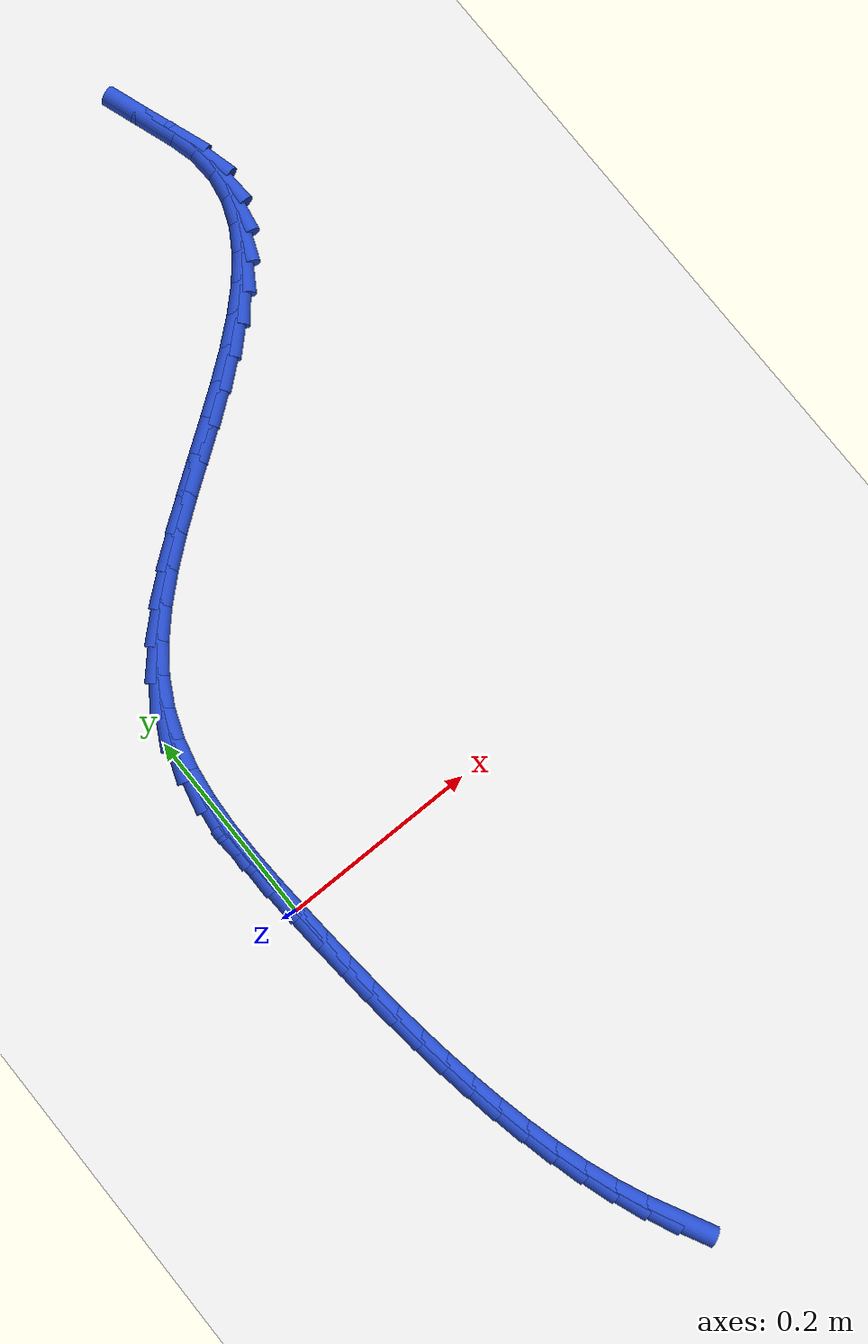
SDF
<sdf version="1.6">
 <world name="default">
  <model name="ground_plane">
   <static>1</static>
   <link name="link">
    <collision name="collision">
     <geometry><plane><normal>0 0 1</normal><size>100 100</size></plane></geometry>
     <surface><friction><ode><mu>100</mu><mu2>50</mu2></ode></friction></surface>
    </collision>
    <visual name="visual">
     <cast_shadows>0</cast_shadows>
     <geometry><plane><normal>0 0 1</normal><size>100 100</size></plane></geometry>
     <material>
      <script><uri>file://media/materials/scripts/gazebo.material</uri><name>Gazebo/WhiteGlow</name></script>
     </material>
    </visual>
   </link>
  </model>
  <model name="line">
   <link name="link_0">
    <pose>7.806255641895632e-18 -4.85722573273506e-17 0.01 0 1.57 -1.5054916479996248</pose>
    <collision name="collision">
     <geometry><cylinder><radius>0.01</radius><length>0.08</length></cylinder></geometry>
    </collision>
    <visual name="visual">
     <material>
      <script><name>Gazebo/Blue</name><uri>file://media/materials/scripts/gazebo.material</uri></script>
     </material>
     <geometry><cylinder><radius>0.01</radius><length>0.08</length></cylinder></geometry>
    </visual>
   </link>
   <link name="link_1">
    <pose>-0.002153279578694225 0.03292593603509368 0.01 0 1.57 -1.528168202188111</pose>
    <collision name="collision">
     <geometry><cylinder><radius>0.01</radius><length>0.08</length></cylinder></geometry>
    </collision>
    <visual name="visual">
     <material>
      <script><name>Gazebo/Blue</name><uri>file://media/materials/scripts/gazebo.material</uri></script>
     </material>
     <geometry><cylinder><radius>0.01</radius><length>0.08</length></cylinder></geometry>
    </visual>
   </link>
   <link name="link_2">
    <pose>-0.003565207728112422 0.06602785705789568 0.01 0 1.57 -1.5683758969438606</pose>
    <collision name="collision">
     <geometry><cylinder><radius>0.01</radius><length>0.08</length></cylinder></geometry>
    </collision>
    <visual name="visual">
     <material>
      <script><name>Gazebo/Blue</name><uri>file://media/materials/scripts/gazebo.material</uri></script>
     </material>
     <geometry><cylinder><radius>0.01</radius><length>0.08</length></cylinder></geometry>
    </visual>
   </link>
   <link name="link_3">
    <pose>-0.0036450373039377845 0.09900936234621759 0.01 0 1.57 1.5142610973654411</pose>
    <collision name="collision">
     <geometry><cylinder><radius>0.01</radius><length>0.08</length></cylinder></geometry>
    </collision>
    <visual name="visual">
     <material>
      <script><name>Gazebo/Blue</name><uri>file://media/materials/scripts/gazebo.material</uri></script>
     </material>
     <geometry><cylinder><radius>0.01</radius><length>0.08</length></cylinder></geometry>
    </visual>
   </link>
   <link name="link_4">
    <pose>-0.001802021161853515 0.13157405117787097 0.01 0 1.57 1.4348609604948583</pose>
    <collision name="collision">
     <geometry><cylinder><radius>0.01</radius><length>0.08</length></cylinder></geometry>
    </collision>
    <visual name="visual">
     <material>
      <script><name>Gazebo/Blue</name><uri>file://media/materials/scripts/gazebo.material</uri></script>
     </material>
     <geometry><cylinder><radius>0.01</radius><length>0.08</length></cylinder></geometry>
    </visual>
   </link>
   <link name="link_5">
    <pose>0.002554587842457188 0.1634255228306674 0.01 0 1.57 1.3334462719967795</pose>
    <collision name="collision">
     <geometry><cylinder><radius>0.01</radius><length>0.08</length></cylinder></geometry>
    </collision>
    <visual name="visual">
     <material>
      <script><name>Gazebo/Blue</name><uri>file://media/materials/scripts/gazebo.material</uri></script>
     </material>
     <geometry><cylinder><radius>0.01</radius><length>0.08</length></cylinder></geometry>
    </visual>
   </link>
   <link name="link_6">
    <pose>0.010015536853311118 0.19426737658241858 0.01 0 1.57 1.2096502299227245</pose>
    <collision name="collision">
     <geometry><cylinder><radius>0.01</radius><length>0.08</length></cylinder></geometry>
    </collision>
    <visual name="visual">
     <material>
      <script><name>Gazebo/Blue</name><uri>file://media/materials/scripts/gazebo.material</uri></script>
     </material>
     <geometry><cylinder><radius>0.01</radius><length>0.08</length></cylinder></geometry>
    </visual>
   </link>
   <link name="link_7">
    <pose>0.021171573015025077 0.223803211710936 0.01 0 1.57 1.0664736958915768</pose>
    <collision name="collision">
     <geometry><cylinder><radius>0.01</radius><length>0.08</length></cylinder></geometry>
    </collision>
    <visual name="visual">
     <material>
      <script><name>Gazebo/Blue</name><uri>file://media/materials/scripts/gazebo.material</uri></script>
     </material>
     <geometry><cylinder><radius>0.01</radius><length>0.08</length></cylinder></geometry>
    </visual>
   </link>
   <link name="link_8">
    <pose>0.036593331610565424 0.25174479866111715 0.01 0 1.57 0.9284972561108572</pose>
    <collision name="collision">
     <geometry><cylinder><radius>0.01</radius><length>0.08</length></cylinder></geometry>
    </collision>
    <visual name="visual">
     <material>
      <script><name>Gazebo/Blue</name><uri>file://media/materials/scripts/gazebo.material</uri></script>
     </material>
     <geometry><cylinder><radius>0.01</radius><length>0.08</length></cylinder></geometry>
    </visual>
   </link>
   <link name="link_9">
    <pose>0.056266545943471996 0.27804154534559256 0.01 0 1.57 0.8190971684627749</pose>
    <collision name="collision">
     <geometry><cylinder><radius>0.01</radius><length>0.08</length></cylinder></geometry>
    </collision>
    <visual name="visual">
     <material>
      <script><name>Gazebo/Blue</name><uri>file://media/materials/scripts/gazebo.material</uri></script>
     </material>
     <geometry><cylinder><radius>0.01</radius><length>0.08</length></cylinder></geometry>
    </visual>
   </link>
   <link name="link_10">
    <pose>0.07951474358143529 0.30291190457634526 0.01 0 1.57 0.7365466639839479</pose>
    <collision name="collision">
     <geometry><cylinder><radius>0.01</radius><length>0.08</length></cylinder></geometry>
    </collision>
    <visual name="visual">
     <material>
      <script><name>Gazebo/Blue</name><uri>file://media/materials/scripts/gazebo.material</uri></script>
     </material>
     <geometry><cylinder><radius>0.01</radius><length>0.08</length></cylinder></geometry>
    </visual>
   </link>
   <link name="link_11">
    <pose>0.10562580476078533 0.3265888121759374 0.01 0 1.57 0.677044114920811</pose>
    <collision name="collision">
     <geometry><cylinder><radius>0.01</radius><length>0.08</length></cylinder></geometry>
    </collision>
    <visual name="visual">
     <material>
      <script><name>Gazebo/Blue</name><uri>file://media/materials/scripts/gazebo.material</uri></script>
     </material>
     <geometry><cylinder><radius>0.01</radius><length>0.08</length></cylinder></geometry>
    </visual>
   </link>
   <link name="link_12">
    <pose>0.1338876097178522 0.3493052039669312 0.01 0 1.57 0.6372986058783257</pose>
    <collision name="collision">
     <geometry><cylinder><radius>0.01</radius><length>0.08</length></cylinder></geometry>
    </collision>
    <visual name="visual">
     <material>
      <script><name>Gazebo/Blue</name><uri>file://media/materials/scripts/gazebo.material</uri></script>
     </material>
     <geometry><cylinder><radius>0.01</radius><length>0.08</length></cylinder></geometry>
    </visual>
   </link>
   <link name="link_13">
    <pose>0.16358803868896593 0.37129401577188886 0.01 0 1.57 0.6150211247521259</pose>
    <collision name="collision">
     <geometry><cylinder><radius>0.01</radius><length>0.08</length></cylinder></geometry>
    </collision>
    <visual name="visual">
     <material>
      <script><name>Gazebo/Blue</name><uri>file://media/materials/scripts/gazebo.material</uri></script>
     </material>
     <geometry><cylinder><radius>0.01</radius><length>0.08</length></cylinder></geometry>
    </visual>
   </link>
   <link name="link_14">
    <pose>0.19401497191045652 0.3927881834133726 0.01 0 1.57 0.6090381894384264</pose>
    <collision name="collision">
     <geometry><cylinder><radius>0.01</radius><length>0.08</length></cylinder></geometry>
    </collision>
    <visual name="visual">
     <material>
      <script><name>Gazebo/Blue</name><uri>file://media/materials/scripts/gazebo.material</uri></script>
     </material>
     <geometry><cylinder><radius>0.01</radius><length>0.08</length></cylinder></geometry>
    </visual>
   </link>
   <link name="link_15">
    <pose>0.22445628961865413 0.4140206427139447 0.01 0 1.57 0.6193198782790311</pose>
    <collision name="collision">
     <geometry><cylinder><radius>0.01</radius><length>0.08</length></cylinder></geometry>
    </collision>
    <visual name="visual">
     <material>
      <script><name>Gazebo/Blue</name><uri>file://media/materials/scripts/gazebo.material</uri></script>
     </material>
     <geometry><cylinder><radius>0.01</radius><length>0.08</length></cylinder></geometry>
    </visual>
   </link>
   <link name="link_16">
    <pose>0.2541998720498886 0.43522432949616713 0.01 0 1.57 0.6470504498278268</pose>
    <collision name="collision">
     <geometry><cylinder><radius>0.01</radius><length>0.08</length></cylinder></geometry>
    </collision>
    <visual name="visual">
     <material>
      <script><name>Gazebo/Blue</name><uri>file://media/materials/scripts/gazebo.material</uri></script>
     </material>
     <geometry><cylinder><radius>0.01</radius><length>0.08</length></cylinder></geometry>
    </visual>
   </link>
   <link name="link_17">
    <pose>0.2825335994404902 0.45663217958260244 0.01 0 1.57 0.6947792988689172</pose>
    <collision name="collision">
     <geometry><cylinder><radius>0.01</radius><length>0.08</length></cylinder></geometry>
    </collision>
    <visual name="visual">
     <material>
      <script><name>Gazebo/Blue</name><uri>file://media/materials/scripts/gazebo.material</uri></script>
     </material>
     <geometry><cylinder><radius>0.01</radius><length>0.08</length></cylinder></geometry>
    </visual>
   </link>
   <link name="link_18">
    <pose>0.30874535202678877 0.47847712879581267 0.01 0 1.57 0.7666027263242723</pose>
    <collision name="collision">
     <geometry><cylinder><radius>0.01</radius><length>0.08</length></cylinder></geometry>
    </collision>
    <visual name="visual">
     <material>
      <script><name>Gazebo/Blue</name><uri>file://media/materials/scripts/gazebo.material</uri></script>
     </material>
     <geometry><cylinder><radius>0.01</radius><length>0.08</length></cylinder></geometry>
    </visual>
   </link>
   <link name="link_19">
    <pose>0.3321230100451146 0.5009921129583602 0.01 0 1.57 0.8681351243195626</pose>
    <collision name="collision">
     <geometry><cylinder><radius>0.01</radius><length>0.08</length></cylinder></geometry>
    </collision>
    <visual name="visual">
     <material>
      <script><name>Gazebo/Blue</name><uri>file://media/materials/scripts/gazebo.material</uri></script>
     </material>
     <geometry><cylinder><radius>0.01</radius><length>0.08</length></cylinder></geometry>
    </visual>
   </link>
   <link name="link_20">
    <pose>0.35195445373179746 0.5244100678928072 0.01 0 1.57 1.0055781046518903</pose>
    <collision name="collision">
     <geometry><cylinder><radius>0.01</radius><length>0.08</length></cylinder></geometry>
    </collision>
    <visual name="visual">
     <material>
      <script><name>Gazebo/Blue</name><uri>file://media/materials/scripts/gazebo.material</uri></script>
     </material>
     <geometry><cylinder><radius>0.01</radius><length>0.08</length></cylinder></geometry>
    </visual>
   </link>
   <link name="link_21">
    <pose>0.36752756332316755 0.5489639294217157 0.01 0 1.57 1.1825465702987052</pose>
    <collision name="collision">
     <geometry><cylinder><radius>0.01</radius><length>0.08</length></cylinder></geometry>
    </collision>
    <visual name="visual">
     <material>
      <script><name>Gazebo/Blue</name><uri>file://media/materials/scripts/gazebo.material</uri></script>
     </material>
     <geometry><cylinder><radius>0.01</radius><length>0.08</length></cylinder></geometry>
    </visual>
   </link>
   <link name="link_22">
    <pose>0.3781302190555547 0.5748866333676479 0.01 0 1.57 1.3939115740549082</pose>
    <collision name="collision">
     <geometry><cylinder><radius>0.01</radius><length>0.08</length></cylinder></geometry>
    </collision>
    <visual name="visual">
     <material>
      <script><name>Gazebo/Blue</name><uri>file://media/materials/scripts/gazebo.material</uri></script>
     </material>
     <geometry><cylinder><radius>0.01</radius><length>0.08</length></cylinder></geometry>
    </visual>
   </link>
   <link name="link_23">
    <pose>0.3830503011652894 0.6024111155531664 0.01 0 1.57 -1.5206119438942363</pose>
    <collision name="collision">
     <geometry><cylinder><radius>0.01</radius><length>0.08</length></cylinder></geometry>
    </collision>
    <visual name="visual">
     <material>
      <script><name>Gazebo/Blue</name><uri>file://media/materials/scripts/gazebo.material</uri></script>
     </material>
     <geometry><cylinder><radius>0.01</radius><length>0.08</length></cylinder></geometry>
    </visual>
   </link>
   <link name="link_24">
    <pose>0.3815756898887013 0.6317703118008332 0.01 0 1.57 -1.3179037018304514</pose>
    <collision name="collision">
     <geometry><cylinder><radius>0.01</radius><length>0.08</length></cylinder></geometry>
    </collision>
    <visual name="visual">
     <material>
      <script><name>Gazebo/Blue</name><uri>file://media/materials/scripts/gazebo.material</uri></script>
     </material>
     <geometry><cylinder><radius>0.01</radius><length>0.08</length></cylinder></geometry>
    </visual>
   </link>
   <link name="link_25">
    <pose>0.37350186189091855 0.6630127015235091 0.01 0 1.57 -1.2231471986598406</pose>
    <collision name="collision">
     <geometry><cylinder><radius>0.01</radius><length>0.08</length></cylinder></geometry>
    </collision>
    <visual name="visual">
     <material>
      <script><name>Gazebo/Blue</name><uri>file://media/materials/scripts/gazebo.material</uri></script>
     </material>
     <geometry><cylinder><radius>0.01</radius><length>0.08</length></cylinder></geometry>
    </visual>
   </link>
   <link name="link_26">
    <pose>0.3619138615483157 0.6949913620093348 0.01 0 1.57 -1.2391776412990685</pose>
    <collision name="collision">
     <geometry><cylinder><radius>0.01</radius><length>0.08</length></cylinder></geometry>
    </collision>
    <visual name="visual">
     <material>
      <script><name>Gazebo/Blue</name><uri>file://media/materials/scripts/gazebo.material</uri></script>
     </material>
     <geometry><cylinder><radius>0.01</radius><length>0.08</length></cylinder></geometry>
    </visual>
   </link>
   <link name="link_246">
    <pose>0.09620691902795087 -0.43510841769083314 0.01 0 1.57 -1.0934914818659829</pose>
    <collision name="collision">
     <geometry><cylinder><radius>0.01</radius><length>0.08</length></cylinder></geometry>
    </collision>
    <visual name="visual">
     <material>
      <script><name>Gazebo/Blue</name><uri>file://media/materials/scripts/gazebo.material</uri></script>
     </material>
     <geometry><cylinder><radius>0.01</radius><length>0.08</length></cylinder></geometry>
    </visual>
   </link>
   <link name="link_247">
    <pose>0.08153579691368065 -0.4067414303514213 0.01 0 1.57 -1.1585247221976176</pose>
    <collision name="collision">
     <geometry><cylinder><radius>0.01</radius><length>0.08</length></cylinder></geometry>
    </collision>
    <visual name="visual">
     <material>
      <script><name>Gazebo/Blue</name><uri>file://media/materials/scripts/gazebo.material</uri></script>
     </material>
     <geometry><cylinder><radius>0.01</radius><length>0.08</length></cylinder></geometry>
    </visual>
   </link>
   <link name="link_248">
    <pose>0.06867376315071975 -0.37733137727315935 0.01 0 1.57 -1.2155576266182184</pose>
    <collision name="collision">
     <geometry><cylinder><radius>0.01</radius><length>0.08</length></cylinder></geometry>
    </collision>
    <visual name="visual">
     <material>
      <script><name>Gazebo/Blue</name><uri>file://media/materials/scripts/gazebo.material</uri></script>
     </material>
     <geometry><cylinder><radius>0.01</radius><length>0.08</length></cylinder></geometry>
    </visual>
   </link>
   <link name="link_249">
    <pose>0.057455828722243744 -0.34709245478618 0.01 0 1.57 -1.2650476269922257</pose>
    <collision name="collision">
     <geometry><cylinder><radius>0.01</radius><length>0.08</length></cylinder></geometry>
    </collision>
    <visual name="visual">
     <material>
      <script><name>Gazebo/Blue</name><uri>file://media/materials/scripts/gazebo.material</uri></script>
     </material>
     <geometry><cylinder><radius>0.01</radius><length>0.08</length></cylinder></geometry>
    </visual>
   </link>
   <link name="link_250">
    <pose>0.04771700461142833 -0.31623885922061623 0.01 0 1.57 -1.307498964011261</pose>
    <collision name="collision">
     <geometry><cylinder><radius>0.01</radius><length>0.08</length></cylinder></geometry>
    </collision>
    <visual name="visual">
     <material>
      <script><name>Gazebo/Blue</name><uri>file://media/materials/scripts/gazebo.material</uri></script>
     </material>
     <geometry><cylinder><radius>0.01</radius><length>0.08</length></cylinder></geometry>
    </visual>
   </link>
   <link name="link_251">
    <pose>0.039292301801449166 -0.2849847869066008 0.01 0 1.57 -1.343390446291613</pose>
    <collision name="collision">
     <geometry><cylinder><radius>0.01</radius><length>0.08</length></cylinder></geometry>
    </collision>
    <visual name="visual">
     <material>
      <script><name>Gazebo/Blue</name><uri>file://media/materials/scripts/gazebo.material</uri></script>
     </material>
     <geometry><cylinder><radius>0.01</radius><length>0.08</length></cylinder></geometry>
    </visual>
   </link>
   <link name="link_252">
    <pose>0.032016731275481713 -0.25354443417426564 0.01 0 1.57 -1.3732302678950685</pose>
    <collision name="collision">
     <geometry><cylinder><radius>0.01</radius><length>0.08</length></cylinder></geometry>
    </collision>
    <visual name="visual">
     <material>
      <script><name>Gazebo/Blue</name><uri>file://media/materials/scripts/gazebo.material</uri></script>
     </material>
     <geometry><cylinder><radius>0.01</radius><length>0.08</length></cylinder></geometry>
    </visual>
   </link>
   <link name="link_253">
    <pose>0.025727067171319562 -0.22212397183037177 0.01 0 1.57 -1.3991261681877154</pose>
    <collision name="collision">
     <geometry><cylinder><radius>0.01</radius><length>0.08</length></cylinder></geometry>
    </collision>
    <visual name="visual">
     <material>
      <script><name>Gazebo/Blue</name><uri>file://media/materials/scripts/gazebo.material</uri></script>
     </material>
     <geometry><cylinder><radius>0.01</radius><length>0.08</length></cylinder></geometry>
    </visual>
   </link>
   <link name="link_254">
    <pose>0.02029283702108693 -0.19078048385221535 0.01 0 1.57 -1.4225563800656351</pose>
    <collision name="collision">
     <geometry><cylinder><radius>0.01</radius><length>0.08</length></cylinder></geometry>
    </collision>
    <visual name="visual">
     <material>
      <script><name>Gazebo/Blue</name><uri>file://media/materials/scripts/gazebo.material</uri></script>
     </material>
     <geometry><cylinder><radius>0.01</radius><length>0.08</length></cylinder></geometry>
    </visual>
   </link>
   <link name="link_255">
    <pose>0.01561249822589035 -0.159439371302045 0.01 0 1.57 -1.4433160787148935</pose>
    <collision name="collision">
     <geometry><cylinder><radius>0.01</radius><length>0.08</length></cylinder></geometry>
    </collision>
    <visual name="visual">
     <material>
      <script><name>Gazebo/Blue</name><uri>file://media/materials/scripts/gazebo.material</uri></script>
     </material>
     <geometry><cylinder><radius>0.01</radius><length>0.08</length></cylinder></geometry>
    </visual>
   </link>
   <link name="link_256">
    <pose>0.011585502940717004 -0.1280215073235467 0.01 0 1.57 -1.4612027540052437</pose>
    <collision name="collision">
     <geometry><cylinder><radius>0.01</radius><length>0.08</length></cylinder></geometry>
    </collision>
    <visual name="visual">
     <material>
      <script><name>Gazebo/Blue</name><uri>file://media/materials/scripts/gazebo.material</uri></script>
     </material>
     <geometry><cylinder><radius>0.01</radius><length>0.08</length></cylinder></geometry>
    </visual>
   </link>
   <link name="link_257">
    <pose>0.008111303320554097 -0.09644776506040686 0.01 0 1.57 -1.476076817178386</pose>
    <collision name="collision">
     <geometry><cylinder><radius>0.01</radius><length>0.08</length></cylinder></geometry>
    </collision>
    <visual name="visual">
     <material>
      <script><name>Gazebo/Blue</name><uri>file://media/materials/scripts/gazebo.material</uri></script>
     </material>
     <geometry><cylinder><radius>0.01</radius><length>0.08</length></cylinder></geometry>
    </visual>
   </link>
   <link name="link_258">
    <pose>0.005089351520388829 -0.06463901765631166 0.01 0 1.57 -1.4878608364161123</pose>
    <collision name="collision">
     <geometry><cylinder><radius>0.01</radius><length>0.08</length></cylinder></geometry>
    </collision>
    <visual name="visual">
     <material>
      <script><name>Gazebo/Blue</name><uri>file://media/materials/scripts/gazebo.material</uri></script>
     </material>
     <geometry><cylinder><radius>0.01</radius><length>0.08</length></cylinder></geometry>
    </visual>
   </link>
   <link name="link_259">
    <pose>0.0024190996952083974 -0.03251613825494728 0.01 0 1.57 -1.496536238366614</pose>
    <collision name="collision">
     <geometry><cylinder><radius>0.01</radius><length>0.08</length></cylinder></geometry>
    </collision>
    <visual name="visual">
     <material>
      <script><name>Gazebo/Blue</name><uri>file://media/materials/scripts/gazebo.material</uri></script>
     </material>
     <geometry><cylinder><radius>0.01</radius><length>0.08</length></cylinder></geometry>
    </visual>
   </link>
   <link name="link_260">
    <pose>3.0357660829594124e-18 0.0 0.01 0 1.57 -1.5021382147302165</pose>
    <collision name="collision">
     <geometry><cylinder><radius>0.01</radius><length>0.08</length></cylinder></geometry>
    </collision>
    <visual name="visual">
     <material>
      <script><name>Gazebo/Blue</name><uri>file://media/materials/scripts/gazebo.material</uri></script>
     </material>
     <geometry><cylinder><radius>0.01</radius><length>0.08</length></cylinder></geometry>
    </visual>
   </link>
   <link name="link_261">
    <pose>-0.0022684954102491542 0.03298852396484396 0.01 0 1.57 -1.5047495207346042</pose>
    <collision name="collision">
     <geometry><cylinder><radius>0.01</radius><length>0.08</length></cylinder></geometry>
    </collision>
    <visual name="visual">
     <material>
      <script><name>Gazebo/Blue</name><uri>file://media/materials/scripts/gazebo.material</uri></script>
     </material>
     <geometry><cylinder><radius>0.01</radius><length>0.08</length></cylinder></geometry>
    </visual>
   </link>
   <link name="link_262">
    <pose>-0.004486934380551877 0.06652856049589839 0.01 0 1.57 -1.5034545764374012</pose>
    <collision name="collision">
     <geometry><cylinder><radius>0.01</radius><length>0.08</length></cylinder></geometry>
    </collision>
    <visual name="visual">
     <material>
      <script><name>Gazebo/Blue</name><uri>file://media/materials/scripts/gazebo.material</uri></script>
     </material>
     <geometry><cylinder><radius>0.01</radius><length>0.08</length></cylinder></geometry>
    </visual>
   </link>
  </model>
 </world>
</sdf>
